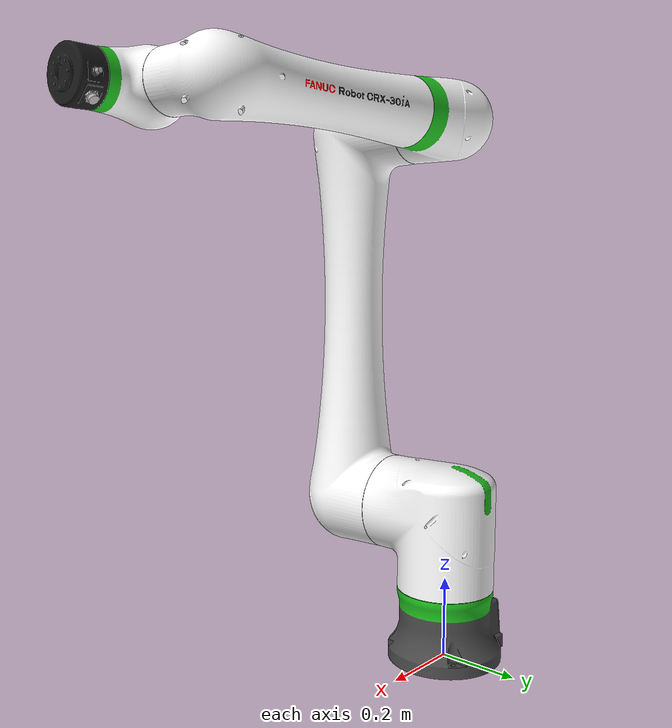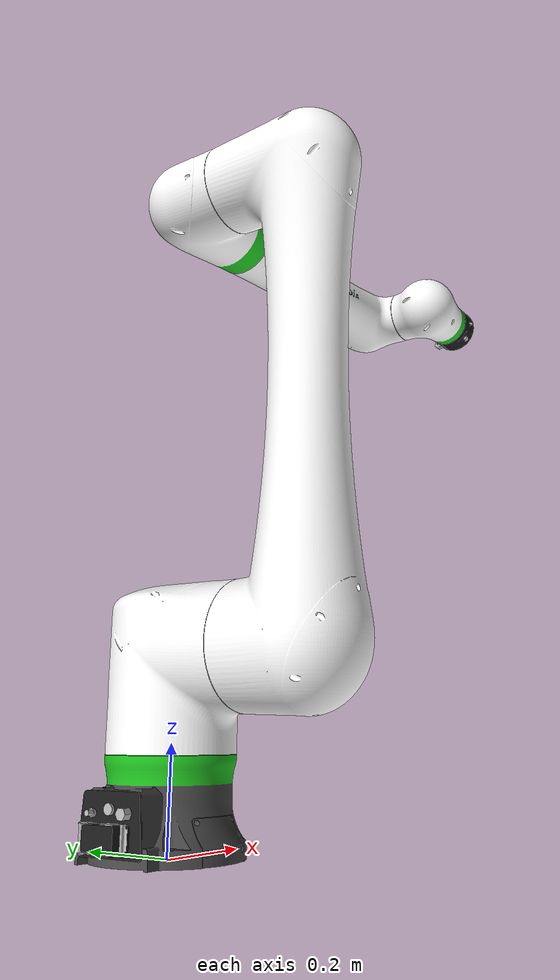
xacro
<?xml version="1.0" ?>
<robot name="crx30ia" xmlns:xacro="http://wiki.ros.org/xacro">
  <xacro:include
    filename="$(find fanuc_crx_description)/urdf/crx30ia_urdf_macro.xacro"
  />

  <link name="world" />
  <link name="ee_link" />
  <xacro:crx30ia parent="world" child="ee_link">
    <origin xyz="0 0 0" rpy="0 0 0" />
  </xacro:crx30ia>
</robot>

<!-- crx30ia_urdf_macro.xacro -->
<!--
SPDX-FileCopyrightText: 2025-2026, FANUC America Corporation
SPDX-FileCopyrightText: 2025-2026, FANUC CORPORATION
SPDX-License-Identifier: Apache-2.0
-->
<robot xmlns:xacro="http://wiki.ros.org/xacro">
  <xacro:macro
    name="crx30ia"
    params="prefix=''
            parent
            *origin
            child"
  >
    <xacro:property name="l_base" value="0.370" />
    <xacro:property name="l_1" value="0.0" />
    <xacro:property name="l_2" value="0.950" />
    <xacro:property name="l_3" value="0.0" />
    <xacro:property name="l_4" value="0.750" />
    <xacro:property name="l_5" value="0.185" />
    <xacro:property name="l_6" value="0.180" />

    <xacro:property name="j1_v" value="80" />
    <xacro:property name="j2_v" value="80" />
    <xacro:property name="j3_v" value="120" />
    <xacro:property name="j4_v" value="180" />
    <xacro:property name="j5_v" value="180" />
    <xacro:property name="j6_v" value="180" />

    <xacro:property name="j1_lower_limit" value="${radians(-179.9)}" />
    <xacro:property name="j2_lower_limit" value="${radians(-179.9)}" />
    <xacro:property name="j3_lower_limit" value="${radians(-270)}" />
    <xacro:property name="j4_lower_limit" value="${radians(-190)}" />
    <xacro:property name="j5_lower_limit" value="${radians(-179.9)}" />
    <xacro:property name="j6_lower_limit" value="${radians(-225)}" />

    <xacro:property name="j1_upper_limit" value="${radians(179.9)}" />
    <xacro:property name="j2_upper_limit" value="${radians(179.9)}" />
    <xacro:property name="j3_upper_limit" value="${radians(270)}" />
    <xacro:property name="j4_upper_limit" value="${radians(190)}" />
    <xacro:property name="j5_upper_limit" value="${radians(179.9)}" />
    <xacro:property name="j6_upper_limit" value="${radians(225)}" />

    <xacro:property name="j1_effort_limit" value="1500" />
    <xacro:property name="j2_effort_limit" value="1500" />
    <xacro:property name="j3_effort_limit" value="700" />
    <xacro:property name="j4_effort_limit" value="150" />
    <xacro:property name="j5_effort_limit" value="150" />
    <xacro:property name="j6_effort_limit" value="120" />

    <xacro:property name="j1_velocity_limit" value="${radians(80)}" />
    <xacro:property name="j2_velocity_limit" value="${radians(80)}" />
    <xacro:property name="j3_velocity_limit" value="${radians(120)}" />
    <xacro:property name="j4_velocity_limit" value="${radians(180)}" />
    <xacro:property name="j5_velocity_limit" value="${radians(180)}" />
    <xacro:property name="j6_velocity_limit" value="${radians(180)}" />

    <!-- links -->
    <link name="${prefix}base_link">
      <visual>
        <origin xyz="0 0 0" rpy="0 0 0" />
        <geometry>
          <mesh
            filename="package://fanuc_crx_description/meshes/crx30ia/visual/base.dae"
          />
        </geometry>
      </visual>
      <collision>
        <origin xyz="0 0 0" rpy="0 0 0" />
        <geometry>
          <mesh
            filename="package://fanuc_crx_description/meshes/crx30ia/collision/base.stl"
            scale="0.001 0.001 0.001"
          />
        </geometry>
      </collision>
      <inertial>
        <mass value="21.685" />
        <origin xyz="-0.00536 0.00024 0.09678" />
        <inertia
          ixx="0.12527923"
          ixy="0.000291545"
          ixz="0.003029499"
          iyy="0.138144056"
          iyz="-0.000163996"
          izz="0.181495336"
        />
      </inertial>
    </link>

    <link name="${prefix}J1_link">
      <visual>
        <origin xyz="0 0 ${-l_base}" rpy="0 0 0" />
        <geometry>
          <mesh
            filename="package://fanuc_crx_description/meshes/crx30ia/visual/j1.dae"
          />
        </geometry>
      </visual>
      <collision>
        <origin xyz="0 0 0" rpy="0 0 0" />
        <geometry>
          <mesh
            filename="package://fanuc_crx_description/meshes/crx30ia/collision/j1.stl"
            scale="0.001 0.001 0.001"
          />
        </geometry>
      </collision>
      <inertial>
        <mass value="41.083" />
        <origin xyz="0.00035 -0.06889 -0.05678" />
        <inertia
          ixx="0.82048807"
          ixy="-0.017541919"
          ixz="0.007165887"
          iyy="0.517715904"
          iyz="-0.164727565"
          izz="0.604395877"
        />
      </inertial>
    </link>

    <link name="${prefix}J2_link">
      <visual>
        <origin xyz="-${l_1} 0 ${-l_base}" rpy="0 0 0" />
        <geometry>
          <mesh
            filename="package://fanuc_crx_description/meshes/crx30ia/visual/j2.dae"
          />
        </geometry>
      </visual>
      <collision>
        <origin xyz="0 0 0" rpy="0 0 0" />
        <geometry>
          <mesh
            filename="package://fanuc_crx_description/meshes/crx30ia/collision/j2.stl"
            scale="0.001 0.001 0.001"
          />
        </geometry>
      </collision>
      <inertial>
        <mass value="41.783" />
        <origin xyz="-0.00009 -0.27645 0.42608" />
        <inertia
          ixx="7.230469225"
          ixy="-1.50504E-05"
          ixz="-0.001548667"
          iyy="7.188756572"
          iyz="0.346298742"
          izz="0.310511653"
        />
      </inertial>
    </link>

    <link name="${prefix}J3_link">
      <visual>
        <origin xyz="-${l_1} 0 ${-l_base - l_2}" rpy="0 0 0" />
        <geometry>
          <mesh
            filename="package://fanuc_crx_description/meshes/crx30ia/visual/j3.dae"
          />
        </geometry>
      </visual>
      <collision>
        <origin xyz="0 0 0" rpy="0 0 0" />
        <geometry>
          <mesh
            filename="package://fanuc_crx_description/meshes/crx30ia/collision/j3.stl"
            scale="0.001 0.001 0.001"
          />
        </geometry>
      </collision>
      <inertial>
        <mass value="11.493" />
        <origin xyz="0.04858 -0.05541 -0.00002" />
        <inertia
          ixx="0.07644438"
          ixy="0.032033116"
          ixz="-0.000109013"
          iyy="0.088680582"
          iyz="0.00008535"
          izz="0.113440904"
        />
      </inertial>
    </link>

    <link name="${prefix}J4_link">
      <visual>
        <origin xyz="${-l_1} 0 ${-l_base - l_2 - l_3}" rpy="0 0 0" />
        <geometry>
          <mesh
            filename="package://fanuc_crx_description/meshes/crx30ia/visual/j4.dae"
          />
        </geometry>
      </visual>
      <collision>
        <origin xyz="0 0 0" rpy="0 0 0" />
        <geometry>
          <mesh
            filename="package://fanuc_crx_description/meshes/crx30ia/collision/j4.stl"
            scale="0.001 0.001 0.001"
          />
        </geometry>
      </collision>
      <inertial>
        <mass value="10.453" />
        <origin xyz="0.47486 -0.01068 0.00284" />
        <inertia
          ixx="0.033221786"
          ixy="-0.031400677"
          ixz="-0.006788255"
          iyy="0.585886882"
          iyz="0.000138711"
          izz="0.591926466"
        />
      </inertial>
    </link>

    <link name="${prefix}J5_link">
      <visual>
        <origin xyz="${-l_1 - l_4} 0 ${-l_base - l_2 - l_3}" rpy="0 0 0" />
        <geometry>
          <mesh
            filename="package://fanuc_crx_description/meshes/crx30ia/visual/j5.dae"
          />
        </geometry>
      </visual>
      <collision>
        <origin xyz="0 -${l_5} 0" rpy="0 0 0" />
        <geometry>
          <mesh
            filename="package://fanuc_crx_description/meshes/crx30ia/collision/j5.stl"
            scale="0.001 0.001 0.001"
          />
        </geometry>
      </collision>
      <inertial>
        <mass value="4.247" />
        <origin xyz="0.02013 -0.1566 0.00022" />
        <inertia
          ixx="0.014928224"
          ixy="-0.002745126"
          ixz="-6.53103E-05"
          iyy="0.013565914"
          iyz="-8.66351E-05"
          izz="0.020297868"
        />
      </inertial>
    </link>

    <link name="${prefix}J6_link">
      <visual>
        <origin xyz="${-l_1 - l_4} ${l_5} ${-l_base - l_2 - l_3}" rpy="0 0 0" />
        <geometry>
          <mesh
            filename="package://fanuc_crx_description/meshes/crx30ia/visual/j6.dae"
          />
        </geometry>
      </visual>
      <collision>
        <origin xyz="${l_6} 0 0" rpy="0 0 0" />
        <geometry>
          <mesh
            filename="package://fanuc_crx_description/meshes/crx30ia/collision/j6.stl"
            scale="0.001 0.001 0.001"
          />
        </geometry>
      </collision>
      <inertial>
        <mass value="2.075" />
        <origin xyz="0.13104 0.00101 -0.00108" />
        <inertia
          ixx="0.003415927"
          ixy="0.000027248"
          ixz="-3.22498E-05"
          iyy="0.003012322"
          iyz="-5.72683E-05"
          izz="0.003057703"
        />
      </inertial>
    </link>

    <!-- joints -->
    <joint name="${prefix}J1" type="revolute">
      <origin xyz="0 0 ${l_base}" rpy="0 0 0" />
      <parent link="${prefix}base_link" />
      <child link="${prefix}J1_link" />
      <axis xyz="0 0 1" />
      <limit
        lower="${j1_lower_limit}"
        upper="${j1_upper_limit}"
        effort="${j1_effort_limit}"
        velocity="${j1_velocity_limit}"
      />
    </joint>

    <joint name="${prefix}J2" type="revolute">
      <origin xyz="${l_1} 0 0" rpy="0 0 0" />
      <parent link="${prefix}J1_link" />
      <child link="${prefix}J2_link" />
      <axis xyz="0 1 0" />
      <limit
        lower="${j2_lower_limit}"
        upper="${j2_upper_limit}"
        effort="${j2_effort_limit}"
        velocity="${j2_velocity_limit}"
      />
    </joint>

    <joint name="${prefix}J3" type="revolute">
      <origin xyz="0 0 ${l_2}" rpy="0 0 0" />
      <parent link="${prefix}J2_link" />
      <child link="${prefix}J3_link" />
      <axis xyz="0 -1 0" />
      <limit
        lower="${j3_lower_limit}"
        upper="${j3_upper_limit}"
        effort="${j3_effort_limit}"
        velocity="${j3_velocity_limit}"
      />
    </joint>

    <joint name="${prefix}J4" type="revolute">
      <origin xyz="0 0 ${l_3}" rpy="0 0 0" />
      <parent link="${prefix}J3_link" />
      <child link="${prefix}J4_link" />
      <axis xyz="-1 0 0" />
      <limit
        lower="${j4_lower_limit}"
        upper="${j4_upper_limit}"
        effort="${j4_effort_limit}"
        velocity="${j4_velocity_limit}"
      />
    </joint>

    <joint name="${prefix}J5" type="revolute">
      <origin xyz="${l_4} 0 0" rpy="0 0 0" />
      <parent link="${prefix}J4_link" />
      <child link="${prefix}J5_link" />
      <axis xyz="0 -1 0" />
      <limit
        lower="${j5_lower_limit}"
        upper="${j5_upper_limit}"
        effort="${j5_effort_limit}"
        velocity="${j5_velocity_limit}"
      />
    </joint>

    <joint name="${prefix}J6" type="revolute">
      <origin xyz="0 -${l_5} 0" rpy="0 0 0" />
      <parent link="${prefix}J5_link" />
      <child link="${prefix}J6_link" />
      <axis xyz="-1 0 0" />
      <limit
        lower="${j6_lower_limit}"
        upper="${j6_upper_limit}"
        effort="${j6_effort_limit}"
        velocity="${j6_velocity_limit}"
      />
    </joint>

    <!-- fanuc world coords -->
    <link name="${prefix}wbase" />
    <joint name="${prefix}base_link-wbase" type="fixed">
      <origin xyz="0 0 ${l_base}" rpy="0 0 0" />
      <parent link="${prefix}base_link" />
      <child link="${prefix}wbase" />
    </joint>

    <!-- flange coords -->
    <link name="${prefix}flange" />
    <joint name="${prefix}J6-flange" type="fixed">
      <origin xyz="${l_6} 0 0" rpy="0 0 0" />
      <parent link="${prefix}J6_link" />
      <child link="${prefix}flange" />
    </joint>

    <!-- FANUC flange coords -->
    <link name="${prefix}fanuc_flange" />
    <joint name="${prefix}flange-fanuc_flange" type="fixed">
      <origin xyz="0 0 0" rpy="${radians( 180)} ${radians(-90)} ${radians( 0)}" />
      <parent link="${prefix}flange" />
      <child link="${prefix}fanuc_flange" />
    </joint>

    <!-- Attach to parent -->
    <joint name="${prefix}base_joint" type="fixed">
      <xacro:insert_block name="origin" />
      <parent link="${parent}" />
      <child link="${prefix}base_link" />
    </joint>

    <!-- Attach child -->
    <joint name="${prefix}child_joint" type="fixed">
      <origin xyz="0 0 0" rpy="0 0 0" />
      <parent link="${prefix}flange" />
      <child link="${child}" />
    </joint>
  </xacro:macro>
</robot>
